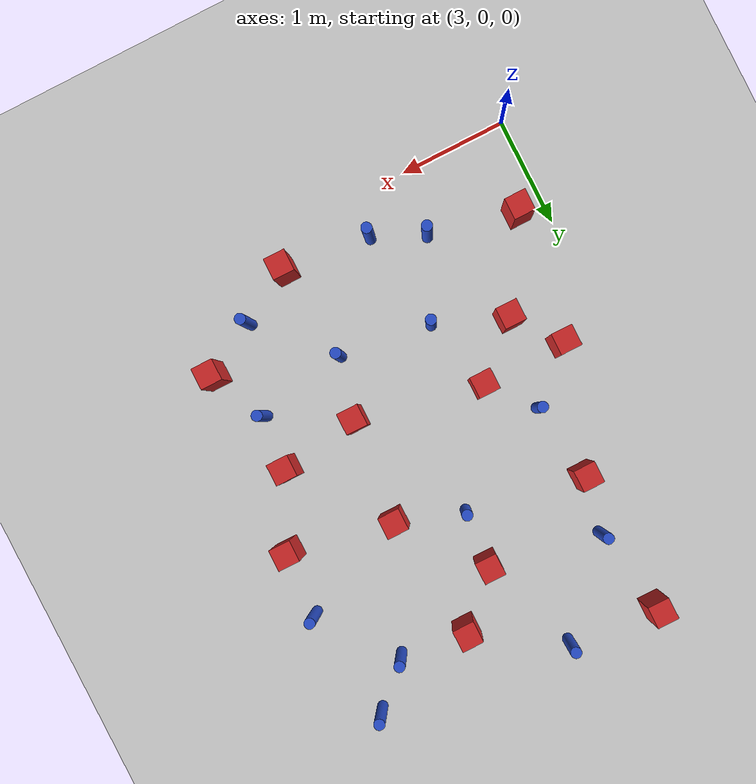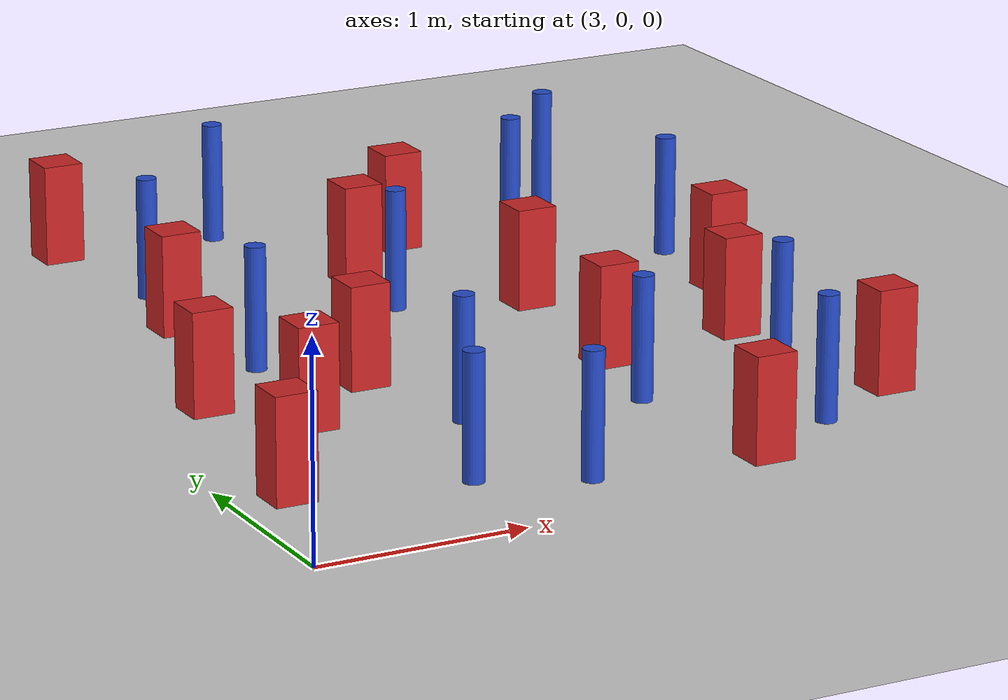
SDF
<sdf version="1.6">
 <world name="default">
  <model name="ground_plane">
   <static>1</static>
   <link name="link">
    <collision name="collision">
     <geometry><plane><normal>0 0 1</normal><size>100 100</size></plane></geometry>
     <surface><friction><ode><mu>100</mu><mu2>50</mu2></ode></friction></surface>
    </collision>
    <visual name="visual">
     <cast_shadows>0</cast_shadows>
     <geometry><plane><normal>0 0 1</normal><size>100 100</size></plane></geometry>
     <material>
      <ambient>1.0 1.0 1.0 1.0</ambient>
      <diffuse>0.8 0.8 0.8 1.0</diffuse>
      <specular>0.01 0.01 0.01 1.000000</specular>
     </material>
    </visual>
   </link>
  </model>
  <model name="square_post_obstacle5">
   <static>true</static>
   <pose>3.76848859604 4.4891068602 1.91545236811e-07 -7.35059704564e-06 1.12565212e-07 2.39332434364e-05</pose>
   <link name="link">
    <pose>0 0 0.25 0 -0 0</pose>
    <inertial>
     <mass>100</mass>
     <inertia>
      <ixx>0.166667</ixx>
      <ixy>0</ixy>
      <ixz>0</ixz>
      <iyy>0.166667</iyy>
      <iyz>0</iyz>
      <izz>0.166667</izz>
     </inertia>
    </inertial>
    <collision name="collision"><geometry><box><size>.2 .2 .5</size></box></geometry></collision>
    <visual name="visual">
     <geometry><box><size>.2 .2 .5</size></box></geometry>
     <material>
      <script><name>Gazebo/Red</name><uri>file://media/materials/scripts/gazebo.material</uri></script>
     </material>
    </visual>
   </link>
  </model>
  <model name="pole_obstacle11">
   <static>true</static>
   <pose>5.98170943575 3.84576997254 7.38925637345e-09 -8.47170692798e-08 1.24976764937e-08 -1.74513093023e-07</pose>
   <link name="link">
    <pose>0 0 0.3 0 -0 0</pose>
    <inertial>
     <mass>1</mass>
     <inertia><ixx>0.145833</ixx><ixy>0</ixy><ixz>0</ixz><iyy>0.145833</iyy><iyz>0</iyz><izz>0.125</izz></inertia>
    </inertial>
    <collision name="collision">
     <geometry><cylinder><radius>0.05</radius><length>.6</length></cylinder></geometry>
    </collision>
    <visual name="visual">
     <geometry><cylinder><radius>0.05</radius><length>.6</length></cylinder></geometry>
     <material>
      <script><name>Gazebo/Blue</name><uri>file://media/materials/scripts/gazebo.material</uri></script>
     </material>
    </visual>
   </link>
  </model>
  <model name="square_post_obstacle13">
   <static>true</static>
   <pose>4.9184155626 3.47502278564 1.91545236811e-07 -7.35059704564e-06 1.12565212e-07 2.39332434364e-05</pose>
   <link name="link">
    <pose>0 0 0.25 0 -0 0</pose>
    <inertial>
     <mass>100</mass>
     <inertia>
      <ixx>0.166667</ixx>
      <ixy>0</ixy>
      <ixz>0</ixz>
      <iyy>0.166667</iyy>
      <iyz>0</iyz>
      <izz>0.166667</izz>
     </inertia>
    </inertial>
    <collision name="collision"><geometry><box><size>.2 .2 .5</size></box></geometry></collision>
    <visual name="visual">
     <geometry><box><size>.2 .2 .5</size></box></geometry>
     <material>
      <script><name>Gazebo/Red</name><uri>file://media/materials/scripts/gazebo.material</uri></script>
     </material>
    </visual>
   </link>
  </model>
  <model name="pole_obstacle25">
   <static>true</static>
   <pose>4.0653053094 0.614794969996 7.38925637345e-09 -8.47170692799e-08 1.24976765038e-08 -1.74513093018e-07</pose>
   <link name="link">
    <pose>0 0 0.3 0 -0 0</pose>
    <inertial>
     <mass>1</mass>
     <inertia><ixx>0.145833</ixx><ixy>0</ixy><ixz>0</ixz><iyy>0.145833</iyy><iyz>0</iyz><izz>0.125</izz></inertia>
    </inertial>
    <collision name="collision">
     <geometry><cylinder><radius>0.05</radius><length>.6</length></cylinder></geometry>
    </collision>
    <visual name="visual">
     <geometry><cylinder><radius>0.05</radius><length>.6</length></cylinder></geometry>
     <material>
      <script><name>Gazebo/Blue</name><uri>file://media/materials/scripts/gazebo.material</uri></script>
     </material>
    </visual>
   </link>
  </model>
  <model name="pole_obstacle33">
   <static>true</static>
   <pose>3.89130578524 2.43610695451 7.38925637345e-09 -8.47170692798e-08 1.24976764939e-08 -1.74513093025e-07</pose>
   <link name="link">
    <pose>0 0 0.3 0 -0 0</pose>
    <inertial>
     <mass>1</mass>
     <inertia><ixx>0.145833</ixx><ixy>0</ixy><ixz>0</ixz><iyy>0.145833</iyy><iyz>0</iyz><izz>0.125</izz></inertia>
    </inertial>
    <collision name="collision">
     <geometry><cylinder><radius>0.05</radius><length>.6</length></cylinder></geometry>
    </collision>
    <visual name="visual">
     <geometry><cylinder><radius>0.05</radius><length>.6</length></cylinder></geometry>
     <material>
      <script><name>Gazebo/Blue</name><uri>file://media/materials/scripts/gazebo.material</uri></script>
     </material>
    </visual>
   </link>
  </model>
  <model name="pole_obstacle57">
   <static>true</static>
   <pose>5.84016304088 0.595460943775 7.38925637345e-09 -8.47170692799e-08 1.24976765038e-08 -1.74513093018e-07</pose>
   <link name="link">
    <pose>0 0 0.3 0 -0 0</pose>
    <inertial>
     <mass>1</mass>
     <inertia><ixx>0.145833</ixx><ixy>0</ixy><ixz>0</ixz><iyy>0.145833</iyy><iyz>0</iyz><izz>0.125</izz></inertia>
    </inertial>
    <collision name="collision">
     <geometry><cylinder><radius>0.05</radius><length>.6</length></cylinder></geometry>
    </collision>
    <visual name="visual">
     <geometry><cylinder><radius>0.05</radius><length>.6</length></cylinder></geometry>
     <material>
      <script><name>Gazebo/Blue</name><uri>file://media/materials/scripts/gazebo.material</uri></script>
     </material>
    </visual>
   </link>
  </model>
  <model name="square_post_obstacle47">
   <static>true</static>
   <pose>6.44515955463 2.56563916747 1.91545236811e-07 -7.35059704564e-06 1.12565212e-07 2.39332434364e-05</pose>
   <link name="link">
    <pose>0 0 0.25 0 -0 0</pose>
    <inertial>
     <mass>100</mass>
     <inertia>
      <ixx>0.166667</ixx>
      <ixy>0</ixy>
      <ixz>0</ixz>
      <iyy>0.166667</iyy>
      <iyz>0</iyz>
      <izz>0.166667</izz>
     </inertia>
    </inertial>
    <collision name="collision"><geometry><box><size>.2 .2 .5</size></box></geometry></collision>
    <visual name="visual">
     <geometry><box><size>.2 .2 .5</size></box></geometry>
     <material>
      <script><name>Gazebo/Red</name><uri>file://media/materials/scripts/gazebo.material</uri></script>
     </material>
    </visual>
   </link>
  </model>
  <model name="square_post_obstacle51">
   <static>true</static>
   <pose>6.3267004611 0.870570817498 1.91545236811e-07 -7.35059704564e-06 1.12565212e-07 2.39332434364e-05</pose>
   <link name="link">
    <pose>0 0 0.25 0 -0 0</pose>
    <inertial>
     <mass>100</mass>
     <inertia>
      <ixx>0.166667</ixx>
      <ixy>0</ixy>
      <ixz>0</ixz>
      <iyy>0.166667</iyy>
      <iyz>0</iyz>
      <izz>0.166667</izz>
     </inertia>
    </inertial>
    <collision name="collision"><geometry><box><size>.2 .2 .5</size></box></geometry></collision>
    <visual name="visual">
     <geometry><box><size>.2 .2 .5</size></box></geometry>
     <material>
      <script><name>Gazebo/Red</name><uri>file://media/materials/scripts/gazebo.material</uri></script>
     </material>
    </visual>
   </link>
  </model>
  <model name="square_post_obstacle72">
   <static>true</static>
   <pose>5.34371566135 0.314402927189 1.91545236811e-07 -7.35059704564e-06 1.12565212e-07 2.39332434364e-05</pose>
   <link name="link">
    <pose>0 0 0.25 0 -0 0</pose>
    <inertial>
     <mass>100</mass>
     <inertia>
      <ixx>0.166667</ixx>
      <ixy>0</ixy>
      <ixz>0</ixz>
      <iyy>0.166667</iyy>
      <iyz>0</iyz>
      <izz>0.166667</izz>
     </inertia>
    </inertial>
    <collision name="collision"><geometry><box><size>.2 .2 .5</size></box></geometry></collision>
    <visual name="visual">
     <geometry><box><size>.2 .2 .5</size></box></geometry>
     <material>
      <script><name>Gazebo/Red</name><uri>file://media/materials/scripts/gazebo.material</uri></script>
     </material>
    </visual>
   </link>
  </model>
  <model name="pole_obstacle90">
   <static>true</static>
   <pose>6.49465895072 3.16985735413 7.38925637345e-09 -8.47170692798e-08 1.24976764937e-08 -1.74513093023e-07</pose>
   <link name="link">
    <pose>0 0 0.3 0 -0 0</pose>
    <inertial>
     <mass>1</mass>
     <inertia><ixx>0.145833</ixx><ixy>0</ixy><ixz>0</ixz><iyy>0.145833</iyy><iyz>0</iyz><izz>0.125</izz></inertia>
    </inertial>
    <collision name="collision">
     <geometry><cylinder><radius>0.05</radius><length>.6</length></cylinder></geometry>
    </collision>
    <visual name="visual">
     <geometry><cylinder><radius>0.05</radius><length>.6</length></cylinder></geometry>
     <material>
      <script><name>Gazebo/Blue</name><uri>file://media/materials/scripts/gazebo.material</uri></script>
     </material>
    </visual>
   </link>
  </model>
  <model name="pole_obstacle103">
   <static>true</static>
   <pose>3.90346842931 3.68673108118 7.38925637345e-09 -8.47170692798e-08 1.24976764939e-08 -1.74513093025e-07</pose>
   <link name="link">
    <pose>0 0 0.3 0 -0 0</pose>
    <inertial>
     <mass>1</mass>
     <inertia><ixx>0.145833</ixx><ixy>0</ixy><ixz>0</ixz><iyy>0.145833</iyy><iyz>0</iyz><izz>0.125</izz></inertia>
    </inertial>
    <collision name="collision">
     <geometry><cylinder><radius>0.05</radius><length>.6</length></cylinder></geometry>
    </collision>
    <visual name="visual">
     <geometry><cylinder><radius>0.05</radius><length>.6</length></cylinder></geometry>
     <material>
      <script><name>Gazebo/Blue</name><uri>file://media/materials/scripts/gazebo.material</uri></script>
     </material>
    </visual>
   </link>
  </model>
  <model name="square_post_obstacle105">
   <static>true</static>
   <pose>4.23063205569 2.02970875541 1.91545236811e-07 -7.35059704564e-06 1.12565212e-07 2.39332434364e-05</pose>
   <link name="link">
    <pose>0 0 0.25 0 -0 0</pose>
    <inertial>
     <mass>100</mass>
     <inertia>
      <ixx>0.166667</ixx>
      <ixy>0</ixy>
      <ixz>0</ixz>
      <iyy>0.166667</iyy>
      <iyz>0</iyz>
      <izz>0.166667</izz>
     </inertia>
    </inertial>
    <collision name="collision"><geometry><box><size>.2 .2 .5</size></box></geometry></collision>
    <visual name="visual">
     <geometry><box><size>.2 .2 .5</size></box></geometry>
     <material>
      <script><name>Gazebo/Red</name><uri>file://media/materials/scripts/gazebo.material</uri></script>
     </material>
    </visual>
   </link>
  </model>
  <model name="pole_obstacle137">
   <static>true</static>
   <pose>4.5914960539 4.42372862276 7.38925637345e-09 -8.47170692796e-08 1.24976764786e-08 -1.74513093032e-07</pose>
   <link name="link">
    <pose>0 0 0.3 0 -0 0</pose>
    <inertial>
     <mass>1</mass>
     <inertia><ixx>0.145833</ixx><ixy>0</ixy><ixz>0</ixz><iyy>0.145833</iyy><iyz>0</iyz><izz>0.125</izz></inertia>
    </inertial>
    <collision name="collision">
     <geometry><cylinder><radius>0.05</radius><length>.6</length></cylinder></geometry>
    </collision>
    <visual name="visual">
     <geometry><cylinder><radius>0.05</radius><length>.6</length></cylinder></geometry>
     <material>
      <script><name>Gazebo/Blue</name><uri>file://media/materials/scripts/gazebo.material</uri></script>
     </material>
    </visual>
   </link>
  </model>
  <model name="pole_obstacle138">
   <static>true</static>
   <pose>6.08892014235 1.39327032241 7.38925637345e-09 -8.471706928e-08 1.24976765134e-08 -1.74513093015e-07</pose>
   <link name="link">
    <pose>0 0 0.3 0 -0 0</pose>
    <inertial>
     <mass>1</mass>
     <inertia><ixx>0.145833</ixx><ixy>0</ixy><ixz>0</ixz><iyy>0.145833</iyy><iyz>0</iyz><izz>0.125</izz></inertia>
    </inertial>
    <collision name="collision">
     <geometry><cylinder><radius>0.05</radius><length>.6</length></cylinder></geometry>
    </collision>
    <visual name="visual">
     <geometry><cylinder><radius>0.05</radius><length>.6</length></cylinder></geometry>
     <material>
      <script><name>Gazebo/Blue</name><uri>file://media/materials/scripts/gazebo.material</uri></script>
     </material>
    </visual>
   </link>
  </model>
  <model name="square_post_obstacle140">
   <static>true</static>
   <pose>3.75969727362 1.60152543352 1.91545236811e-07 -7.35059704564e-06 1.12565212e-07 2.39332434364e-05</pose>
   <link name="link">
    <pose>0 0 0.25 0 -0 0</pose>
    <inertial>
     <mass>100</mass>
     <inertia>
      <ixx>0.166667</ixx>
      <ixy>0</ixy>
      <ixz>0</ixz>
      <iyy>0.166667</iyy>
      <iyz>0</iyz>
      <izz>0.166667</izz>
     </inertia>
    </inertial>
    <collision name="collision"><geometry><box><size>.2 .2 .5</size></box></geometry></collision>
    <visual name="visual">
     <geometry><box><size>.2 .2 .5</size></box></geometry>
     <material>
      <script><name>Gazebo/Red</name><uri>file://media/materials/scripts/gazebo.material</uri></script>
     </material>
    </visual>
   </link>
  </model>
  <model name="pole_obstacle149">
   <static>true</static>
   <pose>6.35868620334 4.20468824969 7.38925637345e-09 -8.47170692796e-08 1.24976764786e-08 -1.74513093032e-07</pose>
   <link name="link">
    <pose>0 0 0.3 0 -0 0</pose>
    <inertial>
     <mass>1</mass>
     <inertia><ixx>0.145833</ixx><ixy>0</ixy><ixz>0</ixz><iyy>0.145833</iyy><iyz>0</iyz><izz>0.125</izz></inertia>
    </inertial>
    <collision name="collision">
     <geometry><cylinder><radius>0.05</radius><length>.6</length></cylinder></geometry>
    </collision>
    <visual name="visual">
     <geometry><cylinder><radius>0.05</radius><length>.6</length></cylinder></geometry>
     <material>
      <script><name>Gazebo/Blue</name><uri>file://media/materials/scripts/gazebo.material</uri></script>
     </material>
    </visual>
   </link>
  </model>
  <model name="pole_obstacle151">
   <static>true</static>
   <pose>5.25033770589 1.22348768476 7.38925637345e-09 -8.471706928e-08 1.24976765134e-08 -1.74513093015e-07</pose>
   <link name="link">
    <pose>0 0 0.3 0 -0 0</pose>
    <inertial>
     <mass>1</mass>
     <inertia><ixx>0.145833</ixx><ixy>0</ixy><ixz>0</ixz><iyy>0.145833</iyy><iyz>0</iyz><izz>0.125</izz></inertia>
    </inertial>
    <collision name="collision">
     <geometry><cylinder><radius>0.05</radius><length>.6</length></cylinder></geometry>
    </collision>
    <visual name="visual">
     <geometry><cylinder><radius>0.05</radius><length>.6</length></cylinder></geometry>
     <material>
      <script><name>Gazebo/Blue</name><uri>file://media/materials/scripts/gazebo.material</uri></script>
     </material>
    </visual>
   </link>
  </model>
  <model name="square_post_obstacle147">
   <static>true</static>
   <pose>3.80060602181 3.154602734 1.91545236811e-07 -7.35059704564e-06 1.12565212e-07 2.39332434364e-05</pose>
   <link name="link">
    <pose>0 0 0.25 0 -0 0</pose>
    <inertial>
     <mass>100</mass>
     <inertia>
      <ixx>0.166667</ixx>
      <ixy>0</ixy>
      <ixz>0</ixz>
      <iyy>0.166667</iyy>
      <iyz>0</iyz>
      <izz>0.166667</izz>
     </inertia>
    </inertial>
    <collision name="collision"><geometry><box><size>.2 .2 .5</size></box></geometry></collision>
    <visual name="visual">
     <geometry><box><size>.2 .2 .5</size></box></geometry>
     <material>
      <script><name>Gazebo/Red</name><uri>file://media/materials/scripts/gazebo.material</uri></script>
     </material>
    </visual>
   </link>
  </model>
  <model name="square_post_obstacle152">
   <static>true</static>
   <pose>5.3552346419 3.90536591982 1.91545236811e-07 -7.35059704564e-06 1.12565212e-07 2.39332434364e-05</pose>
   <link name="link">
    <pose>0 0 0.25 0 -0 0</pose>
    <inertial>
     <mass>100</mass>
     <inertia>
      <ixx>0.166667</ixx>
      <ixy>0</ixy>
      <ixz>0</ixz>
      <iyy>0.166667</iyy>
      <iyz>0</iyz>
      <izz>0.166667</izz>
     </inertia>
    </inertial>
    <collision name="collision"><geometry><box><size>.2 .2 .5</size></box></geometry></collision>
    <visual name="visual">
     <geometry><box><size>.2 .2 .5</size></box></geometry>
     <material>
      <script><name>Gazebo/Red</name><uri>file://media/materials/scripts/gazebo.material</uri></script>
     </material>
    </visual>
   </link>
  </model>
  <model name="pole_obstacle161">
   <static>true</static>
   <pose>4.39848932292 1.34034559362 7.38925637345e-09 -8.471706928e-08 1.24976765134e-08 -1.74513093015e-07</pose>
   <link name="link">
    <pose>0 0 0.3 0 -0 0</pose>
    <inertial>
     <mass>1</mass>
     <inertia><ixx>0.145833</ixx><ixy>0</ixy><ixz>0</ixz><iyy>0.145833</iyy><iyz>0</iyz><izz>0.125</izz></inertia>
    </inertial>
    <collision name="collision">
     <geometry><cylinder><radius>0.05</radius><length>.6</length></cylinder></geometry>
    </collision>
    <visual name="visual">
     <geometry><cylinder><radius>0.05</radius><length>.6</length></cylinder></geometry>
     <material>
      <script><name>Gazebo/Blue</name><uri>file://media/materials/scripts/gazebo.material</uri></script>
     </material>
    </visual>
   </link>
  </model>
  <model name="pole_obstacle166">
   <static>true</static>
   <pose>4.88224303579 2.96250336445 7.38925637345e-09 -8.47170692798e-08 1.24976764937e-08 -1.74513093023e-07</pose>
   <link name="link">
    <pose>0 0 0.3 0 -0 0</pose>
    <inertial>
     <mass>1</mass>
     <inertia><ixx>0.145833</ixx><ixy>0</ixy><ixz>0</ixz><iyy>0.145833</iyy><iyz>0</iyz><izz>0.125</izz></inertia>
    </inertial>
    <collision name="collision">
     <geometry><cylinder><radius>0.05</radius><length>.6</length></cylinder></geometry>
    </collision>
    <visual name="visual">
     <geometry><cylinder><radius>0.05</radius><length>.6</length></cylinder></geometry>
     <material>
      <script><name>Gazebo/Blue</name><uri>file://media/materials/scripts/gazebo.material</uri></script>
     </material>
    </visual>
   </link>
  </model>
  <model name="square_post_obstacle167">
   <static>true</static>
   <pose>3.26192222562 0.797247877738 1.91545236811e-07 -7.35059704564e-06 1.12565212e-07 2.39332434364e-05</pose>
   <link name="link">
    <pose>0 0 0.25 0 -0 0</pose>
    <inertial>
     <mass>100</mass>
     <inertia>
      <ixx>0.166667</ixx>
      <ixy>0</ixy>
      <ixz>0</ixz>
      <iyy>0.166667</iyy>
      <iyz>0</iyz>
      <izz>0.166667</izz>
     </inertia>
    </inertial>
    <collision name="collision"><geometry><box><size>.2 .2 .5</size></box></geometry></collision>
    <visual name="visual">
     <geometry><box><size>.2 .2 .5</size></box></geometry>
     <material>
      <script><name>Gazebo/Red</name><uri>file://media/materials/scripts/gazebo.material</uri></script>
     </material>
    </visual>
   </link>
  </model>
  <model name="square_post_obstacle174">
   <static>true</static>
   <pose>6.12857184844 1.90201946907 1.91545236811e-07 -7.35059704564e-06 1.12565212e-07 2.39332434364e-05</pose>
   <link name="link">
    <pose>0 0 0.25 0 -0 0</pose>
    <inertial>
     <mass>100</mass>
     <inertia>
      <ixx>0.166667</ixx>
      <ixy>0</ixy>
      <ixz>0</ixz>
      <iyy>0.166667</iyy>
      <iyz>0</iyz>
      <izz>0.166667</izz>
     </inertia>
    </inertial>
    <collision name="collision"><geometry><box><size>.2 .2 .5</size></box></geometry></collision>
    <visual name="visual">
     <geometry><box><size>.2 .2 .5</size></box></geometry>
     <material>
      <script><name>Gazebo/Red</name><uri>file://media/materials/scripts/gazebo.material</uri></script>
     </material>
    </visual>
   </link>
  </model>
  <model name="pole_obstacle196">
   <static>true</static>
   <pose>4.53061387324 0.396175859813 7.38925637345e-09 -8.47170692798e-08 1.24976765003e-08 -1.7451309302e-07</pose>
   <link name="link">
    <pose>0 0 0.3 0 -0 0</pose>
    <inertial>
     <mass>1</mass>
     <inertia><ixx>0.145833</ixx><ixy>0</ixy><ixz>0</ixz><iyy>0.145833</iyy><iyz>0</iyz><izz>0.125</izz></inertia>
    </inertial>
    <collision name="collision">
     <geometry><cylinder><radius>0.05</radius><length>.6</length></cylinder></geometry>
    </collision>
    <visual name="visual">
     <geometry><cylinder><radius>0.05</radius><length>.6</length></cylinder></geometry>
     <material>
      <script><name>Gazebo/Blue</name><uri>file://media/materials/scripts/gazebo.material</uri></script>
     </material>
    </visual>
   </link>
  </model>
  <model name="square_post_obstacle211">
   <static>true</static>
   <pose>3.43615733837 2.01664340843 1.91545236811e-07 -7.35059704564e-06 1.12565212e-07 2.39332434364e-05</pose>
   <link name="link">
    <pose>0 0 0.25 0 -0 0</pose>
    <inertial>
     <mass>100</mass>
     <inertia>
      <ixx>0.166667</ixx>
      <ixy>0</ixy>
      <ixz>0</ixz>
      <iyy>0.166667</iyy>
      <iyz>0</iyz>
      <izz>0.166667</izz>
     </inertia>
    </inertial>
    <collision name="collision"><geometry><box><size>.2 .2 .5</size></box></geometry></collision>
    <visual name="visual">
     <geometry><box><size>.2 .2 .5</size></box></geometry>
     <material>
      <script><name>Gazebo/Red</name><uri>file://media/materials/scripts/gazebo.material</uri></script>
     </material>
    </visual>
   </link>
  </model>
  <model name="square_post_obstacle212">
   <static>true</static>
   <pose>5.48576802967 2.74861694488 1.91545236811e-07 -7.35059704564e-06 1.12565212e-07 2.39332434364e-05</pose>
   <link name="link">
    <pose>0 0 0.25 0 -0 0</pose>
    <inertial>
     <mass>100</mass>
     <inertia>
      <ixx>0.166667</ixx>
      <ixy>0</ixy>
      <ixz>0</ixz>
      <iyy>0.166667</iyy>
      <iyz>0</iyz>
      <izz>0.166667</izz>
     </inertia>
    </inertial>
    <collision name="collision"><geometry><box><size>.2 .2 .5</size></box></geometry></collision>
    <visual name="visual">
     <geometry><box><size>.2 .2 .5</size></box></geometry>
     <material>
      <script><name>Gazebo/Red</name><uri>file://media/materials/scripts/gazebo.material</uri></script>
     </material>
    </visual>
   </link>
  </model>
  <model name="square_post_obstacle215">
   <static>true</static>
   <pose>5.39189274702 1.7872213277 1.91545236811e-07 -7.35059704564e-06 1.12565212e-07 2.39332434364e-05</pose>
   <link name="link">
    <pose>0 0 0.25 0 -0 0</pose>
    <inertial>
     <mass>100</mass>
     <inertia>
      <ixx>0.166667</ixx>
      <ixy>0</ixy>
      <ixz>0</ixz>
      <iyy>0.166667</iyy>
      <iyz>0</iyz>
      <izz>0.166667</izz>
     </inertia>
    </inertial>
    <collision name="collision"><geometry><box><size>.2 .2 .5</size></box></geometry></collision>
    <visual name="visual">
     <geometry><box><size>.2 .2 .5</size></box></geometry>
     <material>
      <script><name>Gazebo/Red</name><uri>file://media/materials/scripts/gazebo.material</uri></script>
     </material>
    </visual>
   </link>
  </model>
 </world>
</sdf>
